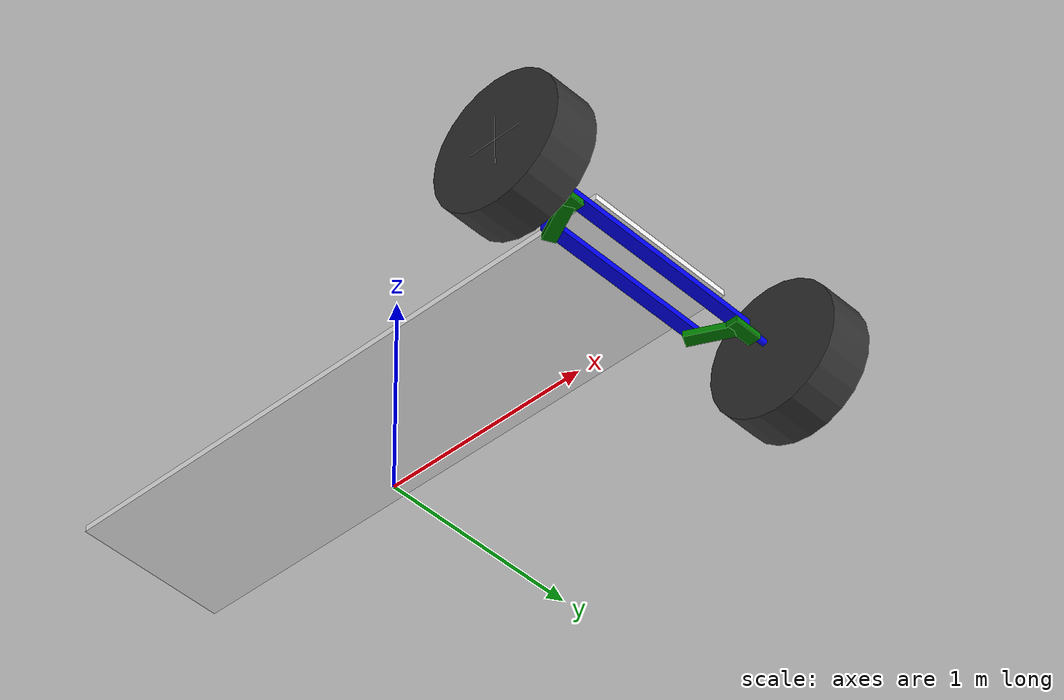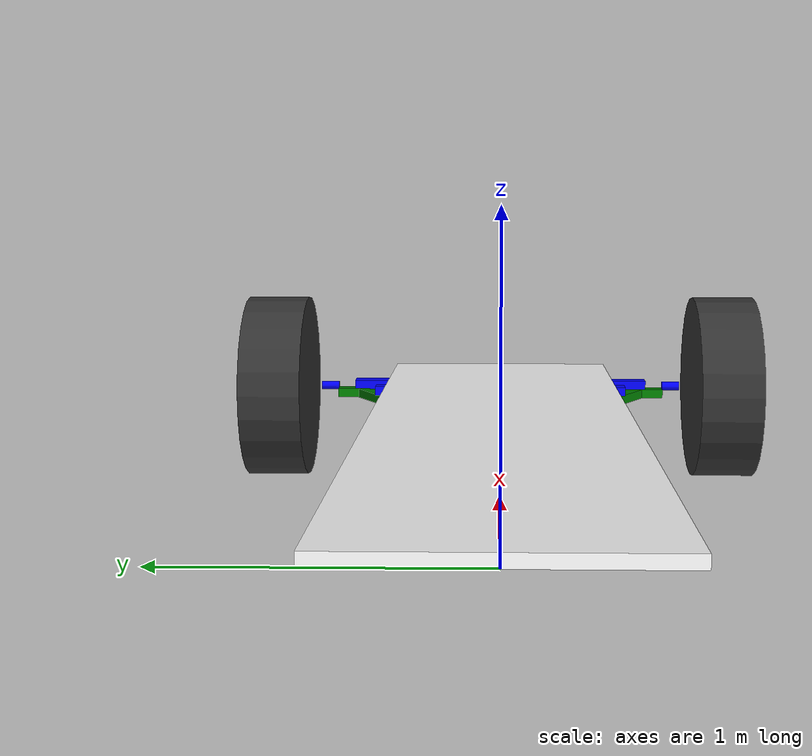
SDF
<?xml version='1.0' ?>

<sdf version='1.6'>
  <model name='prius_1'>
    <pose>0 0 0 0 0 0</pose>
    <link name='chassis_floor'>
      <pose>0 0 0.385184 0 0 0</pose>
      <inertial>
       <pose>0 0 0 0 0 0</pose>
        <mass>57.833</mass>
        <inertia>
          <ixx>2.71553</ixx>
          <ixy>0</ixy>
          <ixz>0</ixz>
          <iyy>68.9</iyy>
          <iyz>0</iyz>
          <izz>71.6063</izz>
        </inertia>
      </inertial>
      <visual name='main'>
        <pose>0 0 0 0 0 0</pose>
        <geometry>
          <box>
            <size>2.8808 0.75 0.030921</size>
          </box>
        </geometry>
        <material>
          <diffuse>1 1 1 1</diffuse>
        </material>
      </visual>
    </link>

    <link name='front_axle'>
      <pose>1.40948 0 0.3302 0 0 0</pose>
      <visual name='visual'>
        <pose>0 0 0 0 0 0</pose>
        <geometry>
          <box>
            <size>0.061842 1.05132 0.030921</size>
          </box>
        </geometry>
        <material>
          <diffuse>0 0 1 1</diffuse>
        </material>
      </visual>
    </link>

    <link name='left_tie_rod_arm'>
      <pose>1.23701032 .40850253 0.299279 0 0 0</pose>
      <visual name='v2'>
        <pose>.06385963 0.03192981 0 0 0 0.463648</pose>
        <geometry>
          <box>
            <size>0.204637 0.061842 0.030921</size>
          </box>
        </geometry>
        <material>
          <diffuse>0 0.5 0 1</diffuse>
        </material>
      </visual>
      <visual name='v1'>
        <pose>.17246863 0.10851978 0 0 -0 0</pose>
        <geometry>
          <box>
            <size>0.061842 0.140955 0.030921</size>
          </box>
        </geometry>
        <material>
          <diffuse>0 0.5 0 1</diffuse>
        </material>
      </visual>
    </link>

    <link name='left_hub'>
      <pose>1.40948 0.618421 0.323342 1.5708 0 0</pose>
      <visual name='visual'>
        <pose>0 0 0 0 0 0</pose>
        <geometry>
          <cylinder>
            <length>0.0618421</length>
            <radius>0.0154605</radius>
          </cylinder>
        </geometry>
        <material>
          <diffuse>0 0 1 1</diffuse>
        </material>
      </visual>
    </link>

    <link name='tie_rod'>
      <pose>1.23701 0 0.3302 0 0 0</pose>
      <visual name='visual'>
        <pose>0 0 0 0 0 0</pose>
        <geometry>
          <box>
            <size>0.061842 0.878847 0.030921</size>
          </box>
        </geometry>
        <material>
          <diffuse>0 0 1 1</diffuse>
      </material>
      </visual>
    </link>

    <link name='left_wheel'>
      <pose>1.40948 0.801993 0.323342 1.5708 0 0</pose>
      <inertial>
        <mass>14.28</mass>
        <inertia>
          <ixx>0.499912</ixx>
          <ixy>0</ixy>
          <ixz>0</ixz>
          <iyy>0.778439</iyy>
          <iyz>0</iyz>
          <izz>0.499912</izz>
        </inertia>
      </inertial>
      <visual name='m2'>
        <pose>0 0 -.1075 0 1.57079 3.14159</pose>
        <material>
          <diffuse>0.9 0.9 0.9 1</diffuse>
        </material>
        <geometry>
          <box>
            <size>0.0025 0.0025 0.25</size>
          </box>
        </geometry>
      </visual>
      <visual name='wheel'>
        <pose>0 0 0 0 0 0</pose>
        <geometry>
          <cylinder>
            <length>0.215</length>
            <radius>0.323342</radius>
          </cylinder>
        </geometry>
        <material>
          <diffuse>0.2 0.2 0.2 1</diffuse>
        </material>
      </visual>
      <visual name='m1'>
        <pose>0 0 -.1075 0 1.5708 1.5708</pose>
        <material>
          <diffuse>0.9 0.9 0.9 1</diffuse>
        </material>
        <geometry>
          <box>
            <size>0.0025 0.0025 0.25</size>
          </box>
        </geometry>
      </visual>
      <collision name='wheel'>
        <laser_retro>0</laser_retro>
        <max_contacts>10</max_contacts>
        <pose>0 0 0 0 0 0</pose>
        <geometry>
          <cylinder>
            <radius>0.323342</radius>
            <length>0.215</length>
          </cylinder>
        </geometry>
      </collision>
    </link>

    <link name='right_tie_rod_arm'>
      <pose>1.23701032 -.40850253 0.299279 0 0 0</pose>
      <visual name='v1'>
        <pose>.17246863 -0.10851978 0 0 -0 0</pose>
        <geometry>
          <box>
            <size>0.061842 0.140955 0.030921</size>
          </box>
        </geometry>
        <material>
          <diffuse>0 0.5 0 1</diffuse>
        </material>
      </visual>
      <visual name='v2'>
        <pose>.06385963 -0.03192981 0 0 0 -0.463648</pose>
        <geometry>
          <box>
            <size>0.204637 0.061842 0.030921</size>
          </box>
        </geometry>
        <material>
          <diffuse>0 0.5 0 1</diffuse>
        </material>
      </visual>
    </link>

    <link name='right_hub'>
      <pose>1.40948 -0.618421 0.323342 1.5708 0 0</pose>
      <visual name='visual'>
        <pose>0 0 0 0 0 0</pose>
        <geometry>
          <cylinder>
            <length>0.0618421</length>
            <radius>0.0154605</radius>
          </cylinder>
        </geometry>
        <material>
          <diffuse>0 0 1 1</diffuse>
        </material>
      </visual>
    </link>

    <link name='right_wheel'>
      <pose>1.40948 -0.801993 0.323342 1.5708 0 0</pose>
      <inertial>
        <mass>14.28</mass>
        <inertia>
          <ixx>0.499912</ixx>
          <ixy>0</ixy>
          <ixz>0</ixz>
          <iyy>0.778439</iyy>
          <iyz>0</iyz>
          <izz>0.499912</izz>
        </inertia>
      </inertial>
      <visual name='m2'>
        <pose>0 0 .1075 0 1.57079 3.14159</pose>
        <material>
          <diffuse>0.9 0.9 0.9 1</diffuse>
        </material>
        <geometry>
          <box>
            <size>0.0025 0.0025 0.25</size>
          </box>
        </geometry>
      </visual>
      <visual name='wheel'>
        <pose>0 0 0 0 0 0</pose>
        <geometry>
          <cylinder>
            <length>0.215</length>
            <radius>0.323342</radius>
          </cylinder>
        </geometry>
        <material>
          <diffuse>0.2 0.2 0.2 1</diffuse>
        </material>
      </visual>
      <visual name='m1'>
        <pose>0 0 .1075 0 1.5708 1.5708</pose>
        <material>
          <diffuse>0.9 0.9 0.9 1</diffuse>
        </material>
        <geometry>
          <box>
            <size>0.0025 0.0025 0.25</size>
          </box>
        </geometry>
      </visual>
      <collision name='wheel'>
        <laser_retro>0</laser_retro>
        <max_contacts>10</max_contacts>
        <pose>0 0 0 0 0 0</pose>
        <geometry>
          <cylinder>
            <radius>0.323342</radius>
            <length>0.215</length>
          </cylinder>
        </geometry>
      </collision>
    </link>

    <joint name='chassis_floor_axle' type='fixed'>
      <parent>chassis_floor</parent>
      <child>front_axle</child>
      <pose>0 0 0 0 0 0</pose>
    </joint>

    <joint name='steering' type='revolute'>
      <parent>front_axle</parent>
      <child>left_tie_rod_arm</child>
      <pose>.17246863 .08623431 0 0 0 0</pose>
      <axis>
        <xyz>0 0 1</xyz>
        <limit>
          <lower>-0.401426</lower>
          <upper>0.5</upper>
        </limit>
      </axis>
    </joint>

    <joint name='left_hub' type='fixed'>
      <parent>left_tie_rod_arm</parent>
      <child>left_hub</child>
      <pose>0 0 0 0 0 0</pose>
    </joint>

    <joint name='left_pin' type='revolute'>
      <parent>left_tie_rod_arm</parent>
      <child>tie_rod</child>
      <pose>0 0.408503 0 0 0 0</pose>
      <axis>
        <xyz>0 0 1</xyz>
      </axis>
    </joint>

    <joint name='left_wheel_joint' type='revolute'>
      <parent>left_hub</parent>
      <child>left_wheel</child>
      <pose>0 0 0 0 0 0</pose>
      <axis>
        <xyz>0 1 0</xyz>
        <use_parent_model_frame>1</use_parent_model_frame>
      </axis>
    </joint>

    <joint name='axle_tie_rod_arm' type='revolute'>
      <parent>front_axle</parent>
      <child>right_tie_rod_arm</child>
      <pose>.17246863 -.08623431 0 0 0 0</pose>
      <axis>
        <xyz>0 0 1</xyz>
        <limit>
          <lower>-0.401426</lower>
          <upper>0.5</upper>
        </limit>
      </axis>
    </joint>

    <joint name='right_hub' type='fixed'>
      <parent>right_tie_rod_arm</parent>
      <child>right_hub</child>
      <pose>0 0 0 0 0 0</pose>
    </joint>

      <!-- the tie_rod's reference frame was modified internally by Drake to be at the left_pin -->

    <joint name='right_wheel_joint' type='revolute'>
      <parent>right_hub</parent>
      <child>right_wheel</child>
      <pose>0 0 0 0 0 0</pose>
      <axis>
        <xyz>0 1 0</xyz>
        <use_parent_model_frame>1</use_parent_model_frame>
      </axis>
    </joint>

  </model>
</sdf>
